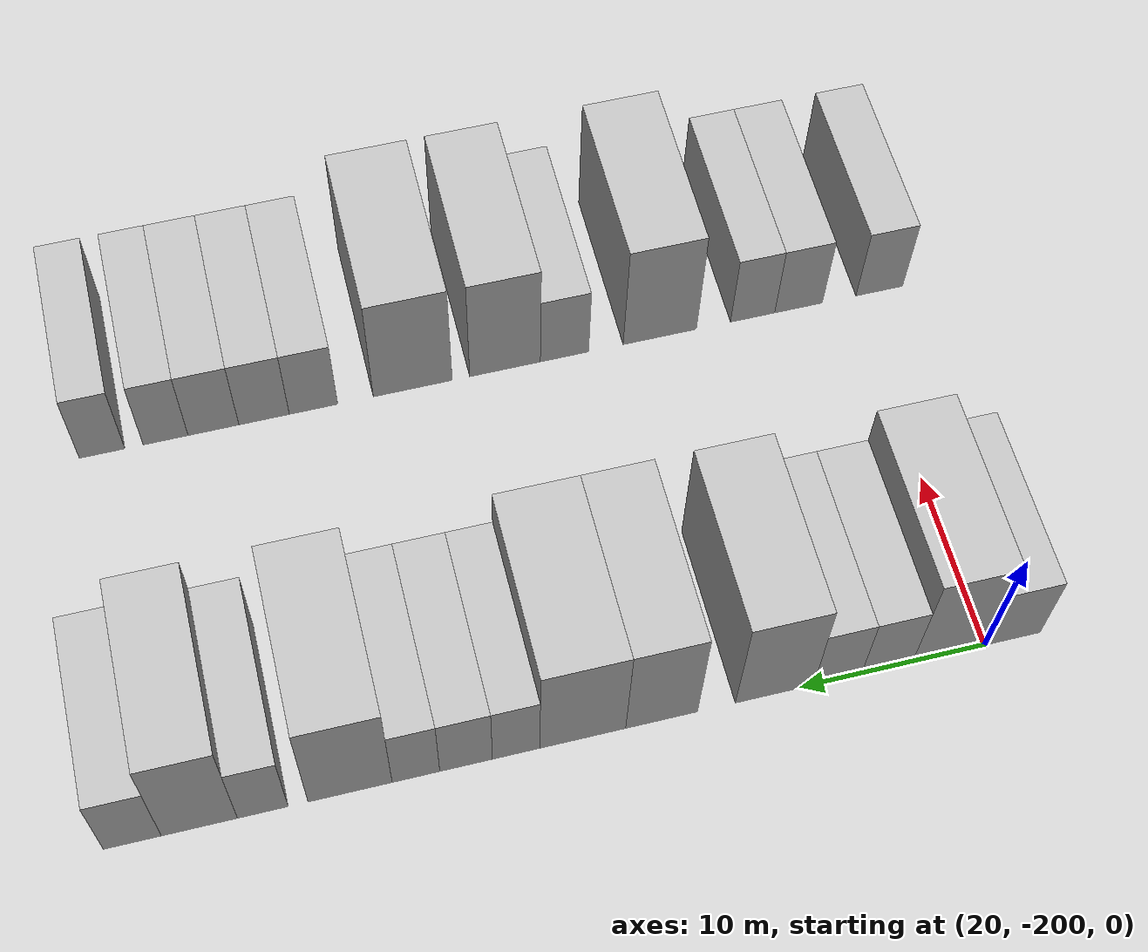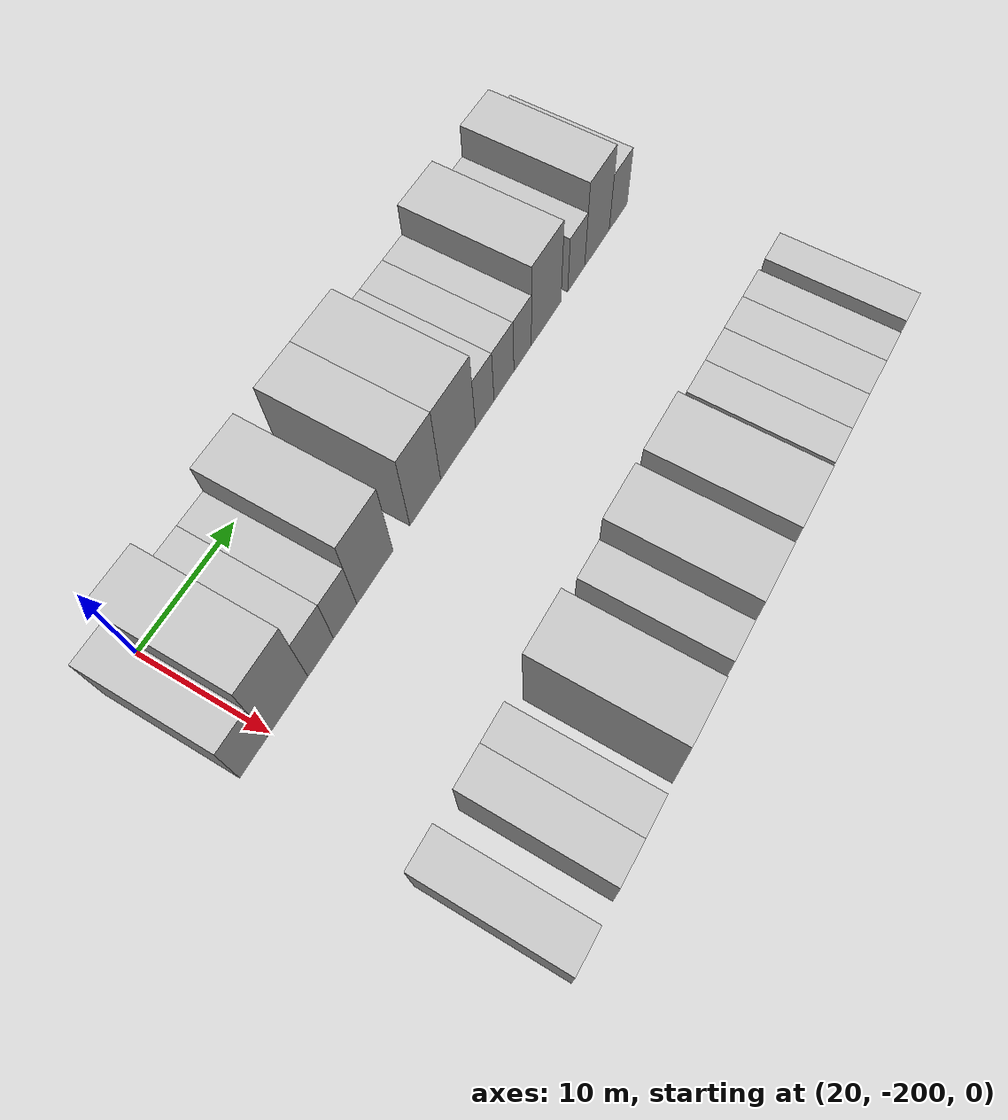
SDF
<sdf version="1.6">
 <world name="default">
  <model name="building_1">
   <static>1</static>
   <pose>25.0000 -201.6089 0 0.000000 0.000000 0.000000</pose>
   <link name="link">
    <pose>0 0 3.00 0 0 0</pose>
    <collision name="collision"><geometry><box><size>10.0000 2.7822 6.0000</size></box></geometry></collision>
    <visual name="visual">
     <cast_shadows>0</cast_shadows>
     <geometry><box><size>10.0000 2.7822 6.0000</size></box></geometry>
     <material>
      <script>
       <uri>model://HANNAS_wall/materials/scripts</uri>
       <uri>model://HANNAS_wall/materials/textures</uri>
       <name>vrc/HANNAS_wall</name>
      </script>
     </material>
    </visual>
   </link>
  </model>
  <model name="building_2">
   <static>1</static>
   <pose>25.0000 -198.1275 0 0.000000 0.000000 0.000000</pose>
   <link name="link">
    <pose>0 0 4.50 0 0 0</pose>
    <collision name="collision"><geometry><box><size>10.0000 4.1806 9.0000</size></box></geometry></collision>
    <visual name="visual">
     <cast_shadows>0</cast_shadows>
     <geometry><box><size>10.0000 4.1806 9.0000</size></box></geometry>
     <material>
      <script>
       <uri>model://HANNAS_wall/materials/scripts</uri>
       <uri>model://HANNAS_wall/materials/textures</uri>
       <name>vrc/HANNAS_wall</name>
      </script>
     </material>
    </visual>
   </link>
  </model>
  <model name="building_3">
   <static>1</static>
   <pose>25.0000 -194.6567 0 0.000000 0.000000 0.000000</pose>
   <link name="link">
    <pose>0 0 3.00 0 0 0</pose>
    <collision name="collision"><geometry><box><size>10.0000 2.7611 6.0000</size></box></geometry></collision>
    <visual name="visual">
     <cast_shadows>0</cast_shadows>
     <geometry><box><size>10.0000 2.7611 6.0000</size></box></geometry>
     <material>
      <script>
       <uri>model://HANNAS_wall/materials/scripts</uri>
       <uri>model://HANNAS_wall/materials/textures</uri>
       <name>vrc/HANNAS_wall</name>
      </script>
     </material>
    </visual>
   </link>
  </model>
  <model name="building_4">
   <static>1</static>
   <pose>25.0000 -191.9876 0 0.000000 0.000000 0.000000</pose>
   <link name="link">
    <pose>0 0 3.00 0 0 0</pose>
    <collision name="collision"><geometry><box><size>10.0000 2.5771 6.0000</size></box></geometry></collision>
    <visual name="visual">
     <cast_shadows>0</cast_shadows>
     <geometry><box><size>10.0000 2.5771 6.0000</size></box></geometry>
     <material>
      <script>
       <uri>model://HANNAS_wall/materials/scripts</uri>
       <uri>model://HANNAS_wall/materials/textures</uri>
       <name>vrc/HANNAS_wall</name>
      </script>
     </material>
    </visual>
   </link>
  </model>
  <model name="building_5">
   <static>1</static>
   <pose>25.0000 -188.6193 0 0.000000 0.000000 0.000000</pose>
   <link name="link">
    <pose>0 0 4.50 0 0 0</pose>
    <collision name="collision"><geometry><box><size>10.0000 4.1595 9.0000</size></box></geometry></collision>
    <visual name="visual">
     <cast_shadows>0</cast_shadows>
     <geometry><box><size>10.0000 4.1595 9.0000</size></box></geometry>
     <material>
      <script>
       <uri>model://HANNAS_wall/materials/scripts</uri>
       <uri>model://HANNAS_wall/materials/textures</uri>
       <name>vrc/HANNAS_wall</name>
      </script>
     </material>
    </visual>
   </link>
  </model>
  <model name="building_6">
   <static>1</static>
   <pose>25.0000 -182.6517 0 0.000000 0.000000 0.000000</pose>
   <link name="link">
    <pose>0 0 4.50 0 0 0</pose>
    <collision name="collision"><geometry><box><size>10.0000 3.7756 9.0000</size></box></geometry></collision>
    <visual name="visual">
     <cast_shadows>0</cast_shadows>
     <geometry><box><size>10.0000 3.7756 9.0000</size></box></geometry>
     <material>
      <script>
       <uri>model://HANNAS_wall/materials/scripts</uri>
       <uri>model://HANNAS_wall/materials/textures</uri>
       <name>vrc/HANNAS_wall</name>
      </script>
     </material>
    </visual>
   </link>
  </model>
  <model name="building_7">
   <static>1</static>
   <pose>25.0000 -178.5277 0 0.000000 0.000000 0.000000</pose>
   <link name="link">
    <pose>0 0 4.50 0 0 0</pose>
    <collision name="collision"><geometry><box><size>10.0000 4.4723 9.0000</size></box></geometry></collision>
    <visual name="visual">
     <cast_shadows>0</cast_shadows>
     <geometry><box><size>10.0000 4.4723 9.0000</size></box></geometry>
     <material>
      <script>
       <uri>model://HANNAS_wall/materials/scripts</uri>
       <uri>model://HANNAS_wall/materials/textures</uri>
       <name>vrc/HANNAS_wall</name>
      </script>
     </material>
    </visual>
   </link>
  </model>
  <model name="building_8">
   <static>1</static>
   <pose>25.0000 -175.0698 0 0.000000 0.000000 0.000000</pose>
   <link name="link">
    <pose>0 0 3.00 0 0 0</pose>
    <collision name="collision"><geometry><box><size>10.0000 2.4434 6.0000</size></box></geometry></collision>
    <visual name="visual">
     <cast_shadows>0</cast_shadows>
     <geometry><box><size>10.0000 2.4434 6.0000</size></box></geometry>
     <material>
      <script>
       <uri>model://HANNAS_wall/materials/scripts</uri>
       <uri>model://HANNAS_wall/materials/textures</uri>
       <name>vrc/HANNAS_wall</name>
      </script>
     </material>
    </visual>
   </link>
  </model>
  <model name="building_9">
   <static>1</static>
   <pose>25.0000 -172.4947 0 0.000000 0.000000 0.000000</pose>
   <link name="link">
    <pose>0 0 3.00 0 0 0</pose>
    <collision name="collision"><geometry><box><size>10.0000 2.7070 6.0000</size></box></geometry></collision>
    <visual name="visual">
     <cast_shadows>0</cast_shadows>
     <geometry><box><size>10.0000 2.7070 6.0000</size></box></geometry>
     <material>
      <script>
       <uri>model://HANNAS_wall/materials/scripts</uri>
       <uri>model://HANNAS_wall/materials/textures</uri>
       <name>vrc/HANNAS_wall</name>
      </script>
     </material>
    </visual>
   </link>
  </model>
  <model name="building_10">
   <static>1</static>
   <pose>25.0000 -169.9263 0 0.000000 0.000000 0.000000</pose>
   <link name="link">
    <pose>0 0 3.00 0 0 0</pose>
    <collision name="collision"><geometry><box><size>10.0000 2.4297 6.0000</size></box></geometry></collision>
    <visual name="visual">
     <cast_shadows>0</cast_shadows>
     <geometry><box><size>10.0000 2.4297 6.0000</size></box></geometry>
     <material>
      <script>
       <uri>model://HANNAS_wall/materials/scripts</uri>
       <uri>model://HANNAS_wall/materials/textures</uri>
       <name>vrc/HANNAS_wall</name>
      </script>
     </material>
    </visual>
   </link>
  </model>
  <model name="building_11">
   <static>1</static>
   <pose>25.0000 -166.5794 0 0.000000 0.000000 0.000000</pose>
   <link name="link">
    <pose>0 0 4.50 0 0 0</pose>
    <collision name="collision"><geometry><box><size>10.0000 4.2642 9.0000</size></box></geometry></collision>
    <visual name="visual">
     <cast_shadows>0</cast_shadows>
     <geometry><box><size>10.0000 4.2642 9.0000</size></box></geometry>
     <material>
      <script>
       <uri>model://HANNAS_wall/materials/scripts</uri>
       <uri>model://HANNAS_wall/materials/textures</uri>
       <name>vrc/HANNAS_wall</name>
      </script>
     </material>
    </visual>
   </link>
  </model>
  <model name="building_12">
   <static>1</static>
   <pose>25.0000 -162.1725 0 0.000000 0.000000 0.000000</pose>
   <link name="link">
    <pose>0 0 3.00 0 0 0</pose>
    <collision name="collision"><geometry><box><size>10.0000 2.5494 6.0000</size></box></geometry></collision>
    <visual name="visual">
     <cast_shadows>0</cast_shadows>
     <geometry><box><size>10.0000 2.5494 6.0000</size></box></geometry>
     <material>
      <script>
       <uri>model://HANNAS_wall/materials/scripts</uri>
       <uri>model://HANNAS_wall/materials/textures</uri>
       <name>vrc/HANNAS_wall</name>
      </script>
     </material>
    </visual>
   </link>
  </model>
  <model name="building_13">
   <static>1</static>
   <pose>25.0000 -159.0019 0 0.000000 0.000000 0.000000</pose>
   <link name="link">
    <pose>0 0 4.50 0 0 0</pose>
    <collision name="collision"><geometry><box><size>10.0000 3.7918 9.0000</size></box></geometry></collision>
    <visual name="visual">
     <cast_shadows>0</cast_shadows>
     <geometry><box><size>10.0000 3.7918 9.0000</size></box></geometry>
     <material>
      <script>
       <uri>model://HANNAS_wall/materials/scripts</uri>
       <uri>model://HANNAS_wall/materials/textures</uri>
       <name>vrc/HANNAS_wall</name>
      </script>
     </material>
    </visual>
   </link>
  </model>
  <model name="building_14">
   <static>1</static>
   <pose>25.0000 -155.6749 0 0.000000 0.000000 0.000000</pose>
   <link name="link">
    <pose>0 0 3.00 0 0 0</pose>
    <collision name="collision"><geometry><box><size>10.0000 2.8622 6.0000</size></box></geometry></collision>
    <visual name="visual">
     <cast_shadows>0</cast_shadows>
     <geometry><box><size>10.0000 2.8622 6.0000</size></box></geometry>
     <material>
      <script>
       <uri>model://HANNAS_wall/materials/scripts</uri>
       <uri>model://HANNAS_wall/materials/textures</uri>
       <name>vrc/HANNAS_wall</name>
      </script>
     </material>
    </visual>
   </link>
  </model>
  <model name="building_110">
   <static>1</static>
   <pose>47.0000 -201.6073 0 0.000000 0.000000 0.000000</pose>
   <link name="link">
    <pose>0 0 3.00 0 0 0</pose>
    <collision name="collision"><geometry><box><size>10.0000 2.7853 6.0000</size></box></geometry></collision>
    <visual name="visual">
     <cast_shadows>0</cast_shadows>
     <geometry><box><size>10.0000 2.7853 6.0000</size></box></geometry>
     <material>
      <script>
       <uri>model://HANNAS_wall/materials/scripts</uri>
       <uri>model://HANNAS_wall/materials/textures</uri>
       <name>vrc/HANNAS_wall</name>
      </script>
     </material>
    </visual>
   </link>
  </model>
  <model name="building_111">
   <static>1</static>
   <pose>47.0000 -196.8061 0 0.000000 0.000000 0.000000</pose>
   <link name="link">
    <pose>0 0 3.00 0 0 0</pose>
    <collision name="collision"><geometry><box><size>10.0000 2.8171 6.0000</size></box></geometry></collision>
    <visual name="visual">
     <cast_shadows>0</cast_shadows>
     <geometry><box><size>10.0000 2.8171 6.0000</size></box></geometry>
     <material>
      <script>
       <uri>model://HANNAS_wall/materials/scripts</uri>
       <uri>model://HANNAS_wall/materials/textures</uri>
       <name>vrc/HANNAS_wall</name>
      </script>
     </material>
    </visual>
   </link>
  </model>
  <model name="building_112">
   <static>1</static>
   <pose>47.0000 -194.0974 0 0.000000 0.000000 0.000000</pose>
   <link name="link">
    <pose>0 0 3.00 0 0 0</pose>
    <collision name="collision"><geometry><box><size>10.0000 2.6004 6.0000</size></box></geometry></collision>
    <visual name="visual">
     <cast_shadows>0</cast_shadows>
     <geometry><box><size>10.0000 2.6004 6.0000</size></box></geometry>
     <material>
      <script>
       <uri>model://HANNAS_wall/materials/scripts</uri>
       <uri>model://HANNAS_wall/materials/textures</uri>
       <name>vrc/HANNAS_wall</name>
      </script>
     </material>
    </visual>
   </link>
  </model>
  <model name="building_113">
   <static>1</static>
   <pose>47.0000 -188.6657 0 0.000000 0.000000 0.000000</pose>
   <link name="link">
    <pose>0 0 4.50 0 0 0</pose>
    <collision name="collision"><geometry><box><size>10.0000 4.2632 9.0000</size></box></geometry></collision>
    <visual name="visual">
     <cast_shadows>0</cast_shadows>
     <geometry><box><size>10.0000 4.2632 9.0000</size></box></geometry>
     <material>
      <script>
       <uri>model://HANNAS_wall/materials/scripts</uri>
       <uri>model://HANNAS_wall/materials/textures</uri>
       <name>vrc/HANNAS_wall</name>
      </script>
     </material>
    </visual>
   </link>
  </model>
  <model name="building_114">
   <static>1</static>
   <pose>47.0000 -183.1464 0 0.000000 0.000000 0.000000</pose>
   <link name="link">
    <pose>0 0 3.00 0 0 0</pose>
    <collision name="collision"><geometry><box><size>10.0000 2.7753 6.0000</size></box></geometry></collision>
    <visual name="visual">
     <cast_shadows>0</cast_shadows>
     <geometry><box><size>10.0000 2.7753 6.0000</size></box></geometry>
     <material>
      <script>
       <uri>model://HANNAS_wall/materials/scripts</uri>
       <uri>model://HANNAS_wall/materials/textures</uri>
       <name>vrc/HANNAS_wall</name>
      </script>
     </material>
    </visual>
   </link>
  </model>
  <model name="building_115">
   <static>1</static>
   <pose>47.0000 -179.7407 0 0.000000 0.000000 0.000000</pose>
   <link name="link">
    <pose>0 0 4.50 0 0 0</pose>
    <collision name="collision"><geometry><box><size>10.0000 4.0362 9.0000</size></box></geometry></collision>
    <visual name="visual">
     <cast_shadows>0</cast_shadows>
     <geometry><box><size>10.0000 4.0362 9.0000</size></box></geometry>
     <material>
      <script>
       <uri>model://HANNAS_wall/materials/scripts</uri>
       <uri>model://HANNAS_wall/materials/textures</uri>
       <name>vrc/HANNAS_wall</name>
      </script>
     </material>
    </visual>
   </link>
  </model>
  <model name="building_116">
   <static>1</static>
   <pose>47.0000 -174.4920 0 0.000000 0.000000 0.000000</pose>
   <link name="link">
    <pose>0 0 4.50 0 0 0</pose>
    <collision name="collision"><geometry><box><size>10.0000 4.4612 9.0000</size></box></geometry></collision>
    <visual name="visual">
     <cast_shadows>0</cast_shadows>
     <geometry><box><size>10.0000 4.4612 9.0000</size></box></geometry>
     <material>
      <script>
       <uri>model://HANNAS_wall/materials/scripts</uri>
       <uri>model://HANNAS_wall/materials/textures</uri>
       <name>vrc/HANNAS_wall</name>
      </script>
     </material>
    </visual>
   </link>
  </model>
  <model name="building_117">
   <static>1</static>
   <pose>47.0000 -168.9097 0 0.000000 0.000000 0.000000</pose>
   <link name="link">
    <pose>0 0 3.00 0 0 0</pose>
    <collision name="collision"><geometry><box><size>10.0000 2.7035 6.0000</size></box></geometry></collision>
    <visual name="visual">
     <cast_shadows>0</cast_shadows>
     <geometry><box><size>10.0000 2.7035 6.0000</size></box></geometry>
     <material>
      <script>
       <uri>model://HANNAS_wall/materials/scripts</uri>
       <uri>model://HANNAS_wall/materials/textures</uri>
       <name>vrc/HANNAS_wall</name>
      </script>
     </material>
    </visual>
   </link>
  </model>
  <model name="building_118">
   <static>1</static>
   <pose>47.0000 -166.1570 0 0.000000 0.000000 0.000000</pose>
   <link name="link">
    <pose>0 0 3.00 0 0 0</pose>
    <collision name="collision"><geometry><box><size>10.0000 2.8018 6.0000</size></box></geometry></collision>
    <visual name="visual">
     <cast_shadows>0</cast_shadows>
     <geometry><box><size>10.0000 2.8018 6.0000</size></box></geometry>
     <material>
      <script>
       <uri>model://HANNAS_wall/materials/scripts</uri>
       <uri>model://HANNAS_wall/materials/textures</uri>
       <name>vrc/HANNAS_wall</name>
      </script>
     </material>
    </visual>
   </link>
  </model>
  <model name="building_119">
   <static>1</static>
   <pose>47.0000 -163.3509 0 0.000000 0.000000 0.000000</pose>
   <link name="link">
    <pose>0 0 3.00 0 0 0</pose>
    <collision name="collision"><geometry><box><size>10.0000 2.8104 6.0000</size></box></geometry></collision>
    <visual name="visual">
     <cast_shadows>0</cast_shadows>
     <geometry><box><size>10.0000 2.8104 6.0000</size></box></geometry>
     <material>
      <script>
       <uri>model://HANNAS_wall/materials/scripts</uri>
       <uri>model://HANNAS_wall/materials/textures</uri>
       <name>vrc/HANNAS_wall</name>
      </script>
     </material>
    </visual>
   </link>
  </model>
  <model name="building_120">
   <static>1</static>
   <pose>47.0000 -160.7114 0 0.000000 0.000000 0.000000</pose>
   <link name="link">
    <pose>0 0 3.00 0 0 0</pose>
    <collision name="collision"><geometry><box><size>10.0000 2.4686 6.0000</size></box></geometry></collision>
    <visual name="visual">
     <cast_shadows>0</cast_shadows>
     <geometry><box><size>10.0000 2.4686 6.0000</size></box></geometry>
     <material>
      <script>
       <uri>model://HANNAS_wall/materials/scripts</uri>
       <uri>model://HANNAS_wall/materials/textures</uri>
       <name>vrc/HANNAS_wall</name>
      </script>
     </material>
    </visual>
   </link>
  </model>
  <model name="building_121">
   <static>1</static>
   <pose>47.0000 -157.2325 0 0.000000 0.000000 0.000000</pose>
   <link name="link">
    <pose>0 0 3.00 0 0 0</pose>
    <collision name="collision"><geometry><box><size>10.0000 2.4892 6.0000</size></box></geometry></collision>
    <visual name="visual">
     <cast_shadows>0</cast_shadows>
     <geometry><box><size>10.0000 2.4892 6.0000</size></box></geometry>
     <material>
      <script>
       <uri>model://HANNAS_wall/materials/scripts</uri>
       <uri>model://HANNAS_wall/materials/textures</uri>
       <name>vrc/HANNAS_wall</name>
      </script>
     </material>
    </visual>
   </link>
  </model>
 </world>
</sdf>
